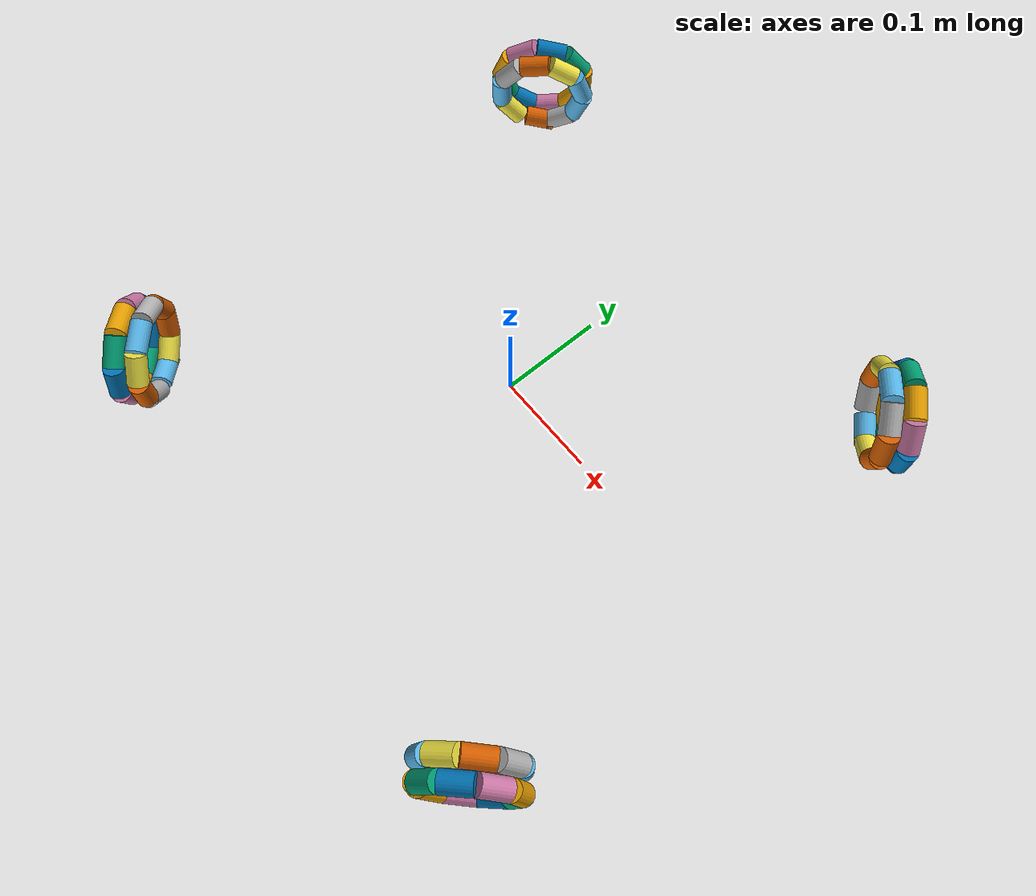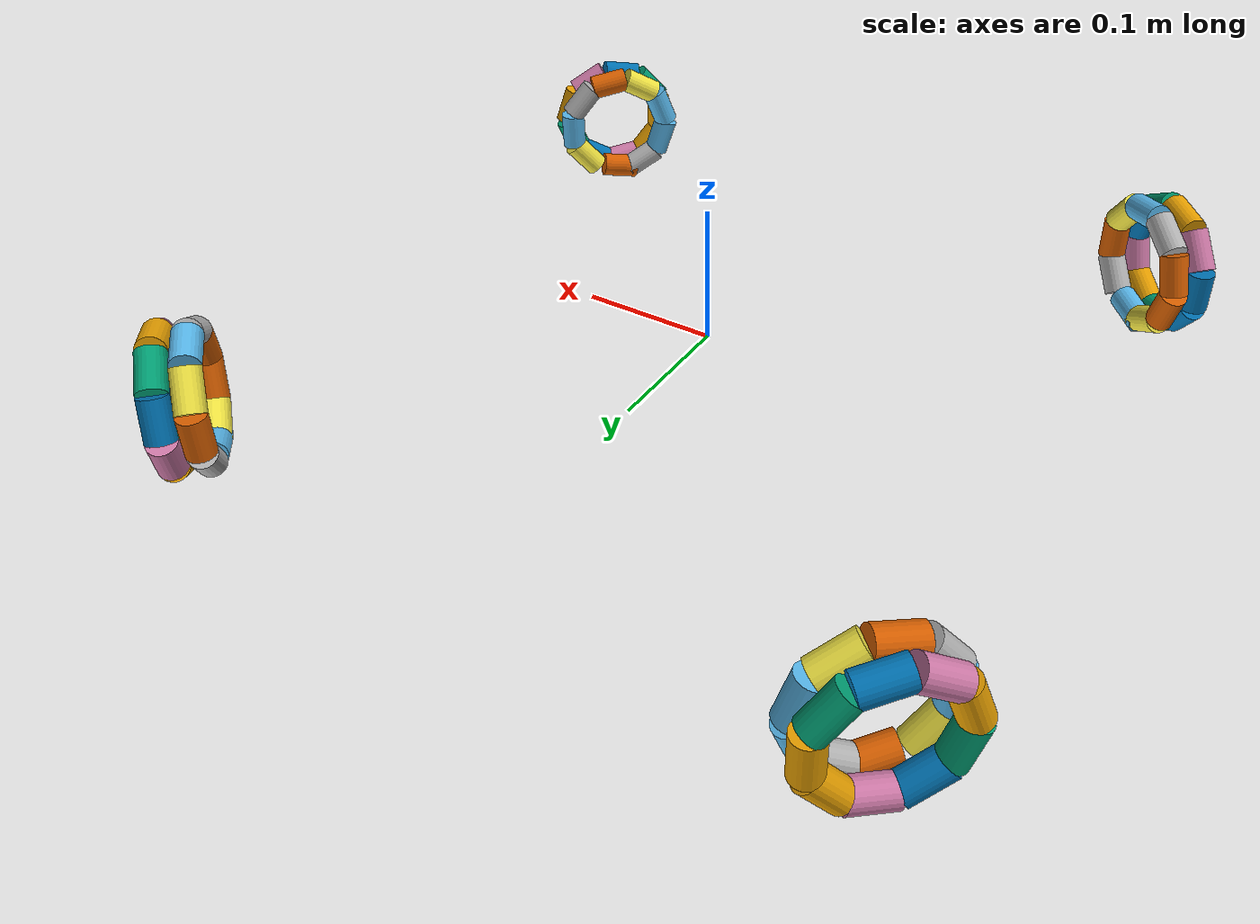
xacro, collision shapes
<?xml version='1.0'?>
<robot name="3_wheel_omni" xmlns:xacro="http://www.ros.org/wiki/xacro">
  <xacro:include filename="$(find gazebo_test)/model/connector.xacro"/>
  <xacro:include filename="$(find gazebo_test)/model/plugins.gazebo"/>

  <!-- World Link -->
  <link name="base_link" />
  <joint name="base_to_chassis" type="fixed">
    <parent link="base_link"/>
    <child link="chassis"/>
  </joint>

  <!-- Chassis -->
  <link name="chassis">
    <visual>
      <origin xyz="0 0 0" rpy="0 0 0" />
      <geometry>
        <mesh filename="file://$(find gazebo_test)/meshes/chassis.stl" />
      </geometry>
      <material name="">
        <color rgba="1 1 0 1" />
      </material>
    </visual>
    <inertial>
      <origin xyz="0 0 0" rpy="0 0 0" />
      <mass value="1"/>
      <inertia ixx="0.0001" ixy="0.0" ixz="0.0" iyy="0.0001" iyz="0.0" izz="0.0001"/>
    </inertial>

  </link>

  <!--Wheel Rims -->
  <xacro:connector name="1" parent="chassis" xyz="0.226 0.226 0.01" rpy="1.57 0 -0.7854" GAZEBO_color = "Gazebo/Red"/>
  <xacro:connector name="2" parent="chassis" xyz="0.226 -0.226 0.01" rpy="1.57 0 -2.3562" GAZEBO_color = "Gazebo/Blue"/>
  <xacro:connector name="3" parent="chassis" xyz="-0.226 -0.226 0.01" rpy="1.57 0 -3.9270" GAZEBO_color = "Gazebo/Green"/>
  <xacro:connector name="4" parent="chassis" xyz="-0.226 0.226 0.01" rpy="1.57 0 -5.4978" GAZEBO_color = "Gazebo/Green"/>

</robot>

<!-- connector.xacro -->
<robot xmlns:xacro="http://www.ros.org/wiki/xacro">
<xacro:include filename="$(find gazebo_test)/model/rim.xacro"/>
<xacro:macro name="connector" params="name parent xyz rpy GAZEBO_color">
  <link name="C${name}">
    <inertial>
      <mass value="0.10"/>
      <inertia ixx="7.6e-5" ixy="0.0" ixz="0.0" iyy="7.6e-5" iyz="0.0" izz="0.000125"/>
    </inertial>
    <visual>
      <geometry>
        <cylinder radius="0.0318" length="0.0572"/>
      </geometry>
    </visual>
  </link>
  <joint name="${parent}_C${name}_joint" type="fixed">
    <parent link="${parent}"/>
    <child link="C${name}"/>
    <origin xyz = "${xyz}" rpy = "${rpy}"/>
  </joint>

  <!--Wheel Rims -->
  <xacro:rim name="wheel_${name}" parent="C${name}" xyz="0 0 -0.0286" rpy="0 0 0" GAZEBO_color = "Gazebo/Red"/>

  <gazebo reference="connector_${name}_link">
    <material value= "${GAZEBO_color}"/>
  </gazebo>

</xacro:macro>
</robot>

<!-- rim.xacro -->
<robot xmlns:xacro="http://www.ros.org/wiki/xacro">
<xacro:include filename="$(find gazebo_test)/model/roller.xacro"/>
<xacro:macro name="rim" params="name parent xyz rpy GAZEBO_color">
  <link name="rim_${name}_link">
    <inertial>
      <mass value="0.10"/>
      <inertia ixx="7.6e-5" ixy="0.0" ixz="0.0" iyy="7.6e-5" iyz="0.0" izz="0.000125"/>
    </inertial>
    <visual>
      <geometry>
        <cylinder radius="0.050" length="0.0364"/>
      </geometry>
    </visual>
  </link>
  <joint name="${parent}_rim_${name}_joint" type="continuous">
    <parent link="${parent}"/>
    <child link="rim_${name}_link"/>
    <axis xyz = "0 0 1"/>
    <origin
    xyz = "${xyz}"
    rpy = "${rpy}"
    />
    <limit effort="1000" velocity="3140"/>
  </joint>
<xacro:roller name="1" parent="${name}"  xyz="0.0415 0 -0.0102" rpy="1.57 0 0"/>
<xacro:roller name="2" parent="${name}"  xyz="0.0390 0.0142 0.0102" rpy="1.57 0 0.3491"/>
<xacro:roller name="3" parent="${name}"  xyz="0.0318 0.0267 -0.0102" rpy="1.57 0 0.6981"/>
<xacro:roller name="4" parent="${name}"  xyz="0.0208 0.0359 0.0102" rpy="1.57 0 1.0472"/>
<xacro:roller name="5" parent="${name}"  xyz="0.0072 0.0409 -0.0102" rpy="1.57 0 1.3963"/>
<xacro:roller name="6" parent="${name}"  xyz="-0.0072 0.0409 0.0102" rpy="1.57 0 1.7453"/>
<xacro:roller name="7" parent="${name}"  xyz="-0.0208 0.0359 -0.0102" rpy="1.57 0 2.0944"/>
<xacro:roller name="8" parent="${name}"  xyz="-0.0318 0.0267 0.0102" rpy="1.57 0 2.4435"/>
<xacro:roller name="9" parent="${name}"  xyz="-0.0390 0.0142 -0.0102" rpy="1.57 0 2.7925"/>
<xacro:roller name="10" parent="${name}"  xyz="-0.0415 0 0.0102" rpy="1.57 0 3.1416"/>
<xacro:roller name="11" parent="${name}"  xyz="-0.0390 -0.0142 -0.0102" rpy="1.57 0 3.4907"/>
<xacro:roller name="12" parent="${name}"  xyz="-0.0318 -0.0267 0.0102" rpy="1.57 0 3.8397"/>
<xacro:roller name="13" parent="${name}"  xyz="-0.0208 -0.0359 -0.0102" rpy="1.57 0 4.1888"/>
<xacro:roller name="14" parent="${name}"  xyz="-0.00072 -0.0409 0.0102" rpy="1.57 0 4.5379"/>
<xacro:roller name="15" parent="${name}"  xyz="0.0072 -0.0409 -0.0102" rpy="1.57 0 4.8869"/>
<xacro:roller name="16" parent="${name}"  xyz="0.0208 -0.0359 0.0102" rpy="1.57 0 5.2360"/>
<xacro:roller name="17" parent="${name}"  xyz="0.0318 -0.0267 -0.0102" rpy="1.57 0 5.5851"/>
<xacro:roller name="18" parent="${name}"  xyz="0.0390 -0.0142 0.0102" rpy="1.57 0 5.9341"/>

  <transmission name="${name}_wheel_tran">
    <type>transmission_interface/SimpleTransmission</type>
    <joint name="${parent}_rim_${name}_joint">
      <hardwareInterface>hardware_interface/EffortJointInterface</hardwareInterface>
    </joint>
    <actuator name="${name}_wheel_motor">
      <hardwareInterface>hardware_interface/EffortJointInterface</hardwareInterface>
      <mechanicalReduction>1</mechanicalReduction>
    </actuator>
  </transmission>

  <gazebo reference="rim_${name}_link">
    <material value= "${GAZEBO_color}"/>
  </gazebo>

</xacro:macro>
</robot>

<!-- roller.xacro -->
<robot xmlns:xacro="http://www.ros.org/wiki/xacro">
<xacro:macro name="roller" params="name parent xyz rpy">
  <link name="roller_${name}_rim_${parent}_link">
    <inertial>
      <inertia ixx="1e-6" ixy="0.0" ixz="0.0" iyy="1e-6" iyz="0.0" izz="1e-7"/>
      <mass value="0.010"/>
    </inertial>
    <visual>
      <geometry>
        <cylinder radius="0.01" length="0.03"/>
      </geometry>
    </visual>
    <collision>
      <geometry>
        <cylinder radius="0.01" length="0.03"/>
      </geometry>
    </collision>
  </link>
  <joint name="roller_${name}_rim_${parent}_joint" type="continuous">
    <parent link="rim_${parent}_link"/>
    <child link="roller_${name}_rim_${parent}_link"/>
    <axis xyz="0 0 1"/>
    <origin xyz="${xyz}" rpy="${rpy}"/>
    <limit effort="1000" velocity="31.4"/>
  </joint>
</xacro:macro>
</robot>
